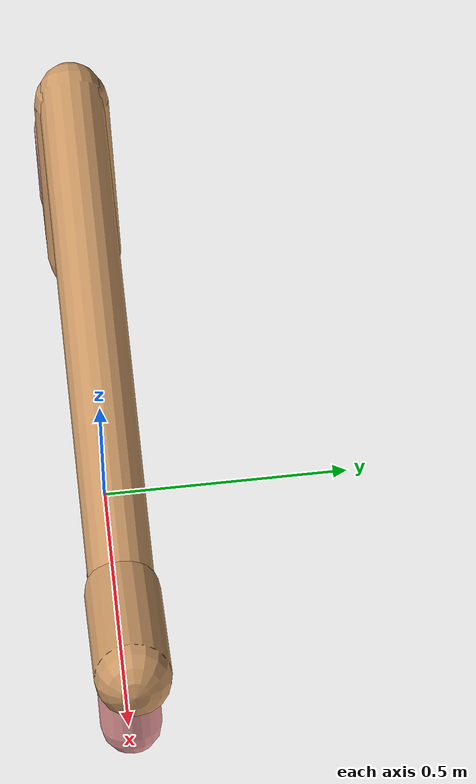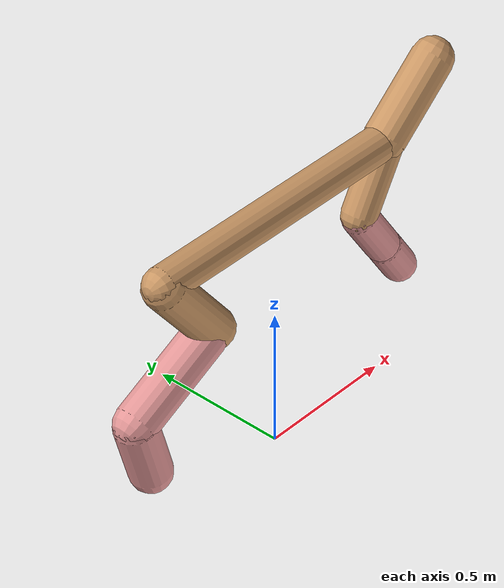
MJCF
<mujoco model="cheetah">
  <compiler angle="radian" coordinate="local" inertiafromgeom="true" settotalmass="14" />
  <default>
    <joint armature=".1" damping=".01" limited="true" solimplimit="0 .8 .03" solreflimit=".02 1" stiffness="8" />
    <geom conaffinity="0" condim="3" contype="1" friction="0.8 .1 .1" rgba="0.8 0.6 .4 1" solimp="0.0 0.8 0.01" solref="0.02 1" />
    <motor ctrllimited="true" ctrlrange="-1 1" />
  </default>
  <size nstack="300000" nuser_geom="1" />
  <option gravity="0 0 -9.81" timestep="0.01" />
  <worldbody>
    <body name="torso" pos="0.0 0.0 0.9006923868463835">
      <joint armature="0" axis="1 0 0" damping="0" limited="false" name="ignorex" pos="0 0 0" stiffness="0" type="slide" />
      <joint armature="0" axis="0 0 1" damping="0" limited="false" name="ignorez" pos="0 0 0" stiffness="0" type="slide" />
      <joint armature="0" axis="0 1 0" damping="0" limited="false" name="ignorey" pos="0 0 0" stiffness="0" type="hinge" />
      <geom fromto="-0.5 0.0 0.0 0.5342791104788539 0.0 0.0" name="torso" size="0.06221153275792746" type="capsule" />
      <geom axisangle="0 1 0 .87" name="head" pos="0.6342791104788538 0.0 0.1" size="0.07169300061111292 0.15" type="capsule" />

      <body name="bthigh" pos="-.5 0 0">
        <joint axis="0 1 0" damping="6" name="bthigh" pos="0 0 0" range="-.52 1.05" stiffness="240" type="hinge" />
        <geom axisangle="0 1 0 -3.8" name="bthigh" pos="0.11503629207010438 0.0 -0.14954717969113568" size="0.07189309235921322 0.16966135262095391" type="capsule" />
        <body name="bshin" pos="0.19007258414020875 0.0 -0.28909435938227135">
          <joint axis="0 1 0" damping="4.5" name="bshin" pos="0 0 0" range="-.785 .785" stiffness="180" type="hinge" />
          <geom axisangle="0 1 0 -2.03" name="bshin" pos="-0.16281839760450162 0.0 -0.08140919880225081" rgba="0.9 0.6 0.6 1" size="0.07189309235921322 0.175511744090642" type="capsule" />
          <body name="bfoot" pos="-0.32563679520900324 0.0 -0.16281839760450162">
            <joint axis="0 1 0" damping="3" name="bfoot" pos="0 0 0" range="-.4 .785" stiffness="120" type="hinge" />
            <geom axisangle="0 1 0 -.27" name="bfoot" pos="0.034723780720171626 0.0 -0.11227355766188826" rgba="0.9 0.6 0.6 1" size="0.07189309235921322 0.10998735963013564" type="capsule" />
            <inertial mass="10" />
          </body>
        </body>
      </body>
      <body name="fthigh" pos="0.5342791104788538 0.0 0.0">
        <joint axis="0 1 0" damping="4.5" name="fthigh" pos="0 0 0" range="-1.5 0.8" stiffness="180" type="hinge" />
        <geom axisangle="0 1 0 .52" name="fthigh" pos="-0.06820548798410603 0.0 -0.11692369368703891" size="0.060584258643099714 0.12943854890439976" type="capsule" />
        <body name="fshin" pos="-0.13641097596821206 0.0 -0.23384738737407781">
          <joint axis="0 1 0" damping="3" name="fshin" pos="0 0 0" range="-1.2 1.1" stiffness="120" type="hinge" />
          <geom axisangle="0 1 0 -.6" name="fshin" pos="0.06333811448652651 0.0 -0.08769892775057517" rgba="0.9 0.6 0.6 1" size="0.060584258643099714 0.10316155025463439" type="capsule" />
          <body name="ffoot" pos="0.12667622897305303 0.0 -0.17539785550115033">
            <joint axis="0 1 0" damping="1.5" name="ffoot" pos="0 0 0" range="-3.1 -0.3" stiffness="60" type="hinge" />
            <geom axisangle="0 1 0 -.6" name="ffoot" pos="0.043986378044190734 0.0 -0.06842325473540782" rgba="0.9 0.6 0.6 1" size="0.060584258643099714 0.06812555205494725" type="capsule" />
            <inertial mass="10" />
          </body>
        </body>
      </body>
    </body>
  </worldbody>
  <actuator>
    <motor gear="120" joint="bthigh" name="bthigh" />
    <motor gear="90" joint="bshin" name="bshin" />
    <motor gear="60" joint="bfoot" name="bfoot" />
    <motor gear="120" joint="fthigh" name="fthigh" />
    <motor gear="60" joint="fshin" name="fshin" />
    <motor gear="30" joint="ffoot" name="ffoot" />
  </actuator>
</mujoco>
